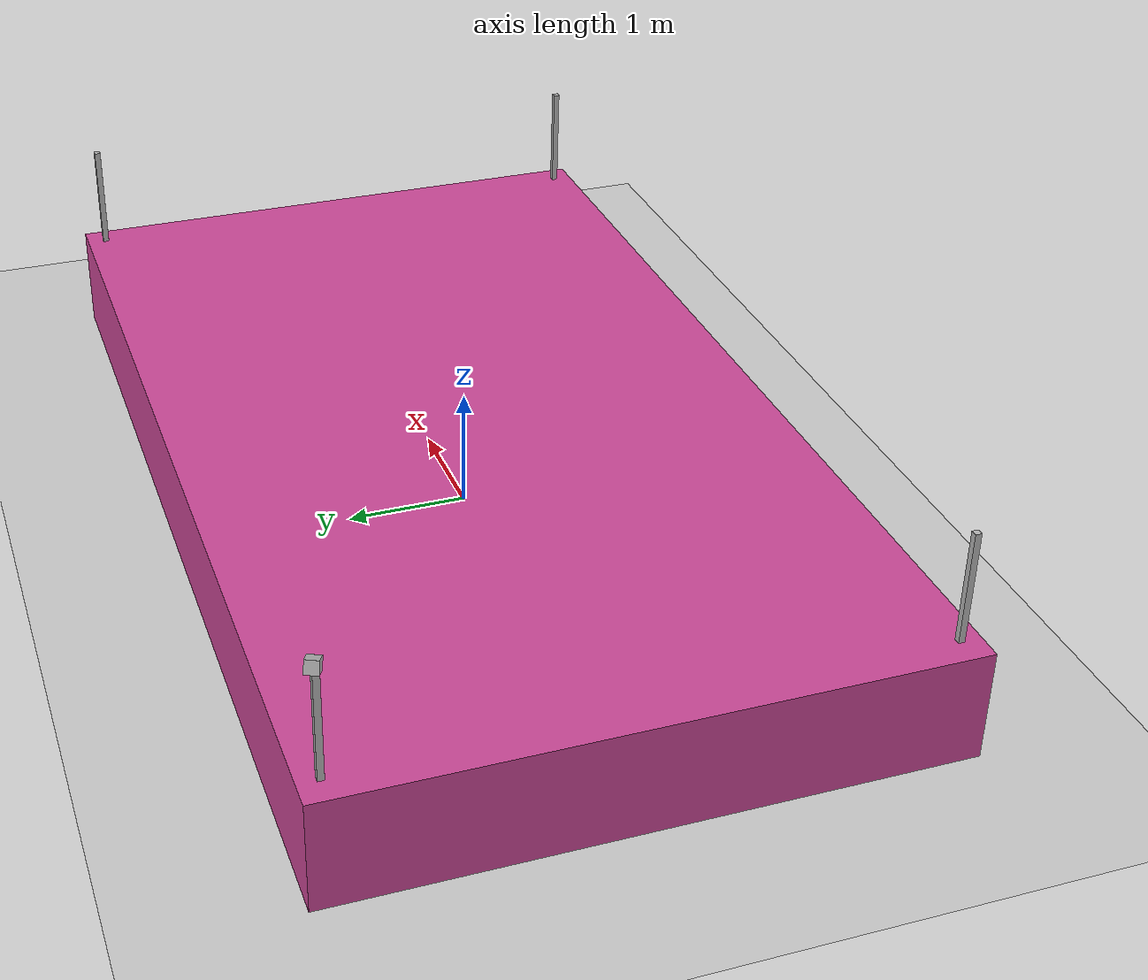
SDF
<sdf version="1.6">
 <world name="default">
  <light name="sun" type="directional">
   <pose>0 0 10 0 -0 0</pose>
   <diffuse>0.8 0.8 0.8 1</diffuse>
   <specular>0.2 0.2 0.2 1</specular>
   <attenuation>
    <range>1000</range>
    <constant>0.9</constant>
    <linear>0.01</linear>
    <quadratic>0.001</quadratic>
   </attenuation>
   <direction>-0.5 0.1 -0.9</direction>
  </light>
  <model name="ground_plane">
   <static>1</static>
   <link name="link">
    <collision name="collision">
     <geometry><plane><normal>0 0 1</normal><size>100 100</size></plane></geometry>
     <surface>
      <contact><collide_bitmask>65535</collide_bitmask></contact>
      <friction><ode><mu>100</mu><mu2>50</mu2></ode></friction>
     </surface>
    </collision>
    <visual name="visual">
     <cast_shadows>0</cast_shadows>
     <geometry><plane><normal>0 0 1</normal><size>100 100</size></plane></geometry>
     <material>
      <script><uri>file://media/materials/scripts/gazebo.material</uri><name>Gazebo/Grey</name></script>
     </material>
    </visual>
   </link>
  </model>
  <gravity>0 0 -9.8</gravity>
  <magnetic_field>6e-06 2.3e-05 -4.2e-05</magnetic_field>
  <atmosphere type="adiabatic"/>
  <physics name="default_physics" default="0" type="ode">
   <max_step_size>0.001</max_step_size>
   <real_time_factor>1</real_time_factor>
   <real_time_update_rate>1000</real_time_update_rate>
  </physics>
  <scene><ambient>0.4 0.4 0.4 1</ambient><background>0.7 0.7 0.7 1</background><shadows>1</shadows></scene>
  <spherical_coordinates>
   <surface_model>EARTH_WGS84</surface_model>
   <latitude_deg>0</latitude_deg>
   <longitude_deg>0</longitude_deg>
   <elevation>0</elevation>
   <heading_deg>0</heading_deg>
  </spherical_coordinates>
  <model name="unnamed">
   <link name="Lfield">
    <inertial>
     <pose>0 0 -0.078571 0 -0 0</pose>
     <mass>0.014</mass>
     <inertia>
      <ixx>0.0477156</ixx>
      <ixy>-0.00216</ixy>
      <ixz>4.33681e-19</ixz>
      <iyy>0.13216</iyy>
      <iyz>0</iyz>
      <izz>0.163148</izz>
     </inertia>
    </inertial>
    <collision name="Lfield_fixed_joint_lump__A1_collision">
     <pose>0 1.205 -0.3 0 -0 0</pose>
     <geometry><box><size>1 0.2 0.4</size></box></geometry>
    </collision>
    <collision name="Lfield_fixed_joint_lump__A2_collision_1">
     <pose>0 -1.205 -0.3 0 -0 0</pose>
     <geometry><box><size>1 0.2 0.4</size></box></geometry>
    </collision>
    <collision name="Lfield_fixed_joint_lump__A3_collision_2">
     <pose>3.54 -1.14 -0.3 0 -0 0</pose>
     <geometry><box><size>1 0.2 0.4</size></box></geometry>
    </collision>
    <collision name="Lfield_fixed_joint_lump__A4_collision_3">
     <pose>2.94 1.74 -0.3 0 -0 1.5708</pose>
     <geometry><box><size>1 0.2 0.4</size></box></geometry>
    </collision>
    <collision name="Lfield_fixed_joint_lump__A5_collision_4">
     <pose>-3.54 1.14 -0.3 0 -0 0</pose>
     <geometry><box><size>1 0.2 0.4</size></box></geometry>
    </collision>
    <collision name="Lfield_fixed_joint_lump__A6_collision_5">
     <pose>-2.94 -1.74 -0.3 0 -0 1.5708</pose>
     <geometry><box><size>1 0.2 0.4</size></box></geometry>
    </collision>
    <collision name="Lfield_fixed_joint_lump__B1_collision_6">
     <pose>-2.14 0 -0.3 0 -0 0</pose>
     <geometry><box><size>0.8 0.2 0.4</size></box></geometry>
    </collision>
    <collision name="Lfield_fixed_joint_lump__B2_collision_7">
     <pose>2.14 0 -0.3 0 -0 0</pose>
     <geometry><box><size>0.8 0.2 0.4</size></box></geometry>
    </collision>
    <collision name="Lfield_fixed_joint_lump__D1_collision_8">
     <pose>4.04 -2.28 0.4 0 -0 0</pose>
     <geometry><box><size>0.05 0.05 1.8</size></box></geometry>
    </collision>
    <collision name="Lfield_fixed_joint_lump__D2_collision_9">
     <pose>4.04 2.28 0.4 0 -0 0</pose>
     <geometry><box><size>0.05 0.05 1.8</size></box></geometry>
    </collision>
    <collision name="Lfield_fixed_joint_lump__D3_collision_10">
     <pose>-4.04 2.28 0.4 0 -0 0</pose>
     <geometry><box><size>0.05 0.05 1.8</size></box></geometry>
    </collision>
    <collision name="Lfield_fixed_joint_lump__D4_collision_11">
     <pose>-4.04 -2.28 0.4 0 -0 0</pose>
     <geometry><box><size>0.05 0.05 1.8</size></box></geometry>
    </collision>
    <collision name="Lfield_fixed_joint_lump__center_collision_12">
     <pose>0 0 -0.3 0 -0 0.7854</pose>
     <geometry><box><size>0.25 0.25 0.4</size></box></geometry>
    </collision>
    <visual name="Lfield_fixed_joint_lump__field_visual">
     <geometry><mesh><scale>4.245 2.445 0.5</scale><uri>../meshes/dae/Cube.001.dae</uri></mesh></geometry>
    </visual>
    <visual name="Lfield_fixed_joint_lump__A1_visual_1">
     <pose>0 1.205 -0.3 0 -0 0</pose>
     <geometry><box><size>1 0.2 0.4</size></box></geometry>
    </visual>
    <visual name="Lfield_fixed_joint_lump__A2_visual_2">
     <pose>0 -1.205 -0.3 0 -0 0</pose>
     <geometry><box><size>1 0.2 0.4</size></box></geometry>
    </visual>
    <visual name="Lfield_fixed_joint_lump__A3_visual_3">
     <pose>3.54 -1.14 -0.3 0 -0 0</pose>
     <geometry><box><size>1 0.2 0.4</size></box></geometry>
    </visual>
    <visual name="Lfield_fixed_joint_lump__A4_visual_4">
     <pose>2.94 1.74 -0.3 0 -0 1.5708</pose>
     <geometry><box><size>1 0.2 0.4</size></box></geometry>
    </visual>
    <visual name="Lfield_fixed_joint_lump__A5_visual_5">
     <pose>-3.54 1.14 -0.3 0 -0 0</pose>
     <geometry><box><size>1 0.2 0.4</size></box></geometry>
    </visual>
    <visual name="Lfield_fixed_joint_lump__A6_visual_6">
     <pose>-2.94 -1.74 -0.3 0 -0 1.5708</pose>
     <geometry><box><size>1 0.2 0.4</size></box></geometry>
    </visual>
    <visual name="Lfield_fixed_joint_lump__B1_visual_7">
     <pose>-2.14 0 -0.3 0 -0 0</pose>
     <geometry><box><size>0.8 0.2 0.4</size></box></geometry>
    </visual>
    <visual name="Lfield_fixed_joint_lump__B2_visual_8">
     <pose>2.14 0 -0.3 0 -0 0</pose>
     <geometry><box><size>0.8 0.2 0.4</size></box></geometry>
    </visual>
    <visual name="Lfield_fixed_joint_lump__D1_visual_9">
     <pose>4.04 -2.28 0.4 0 -0 0</pose>
     <geometry><box><size>0.05 0.05 1.8</size></box></geometry>
    </visual>
    <visual name="Lfield_fixed_joint_lump__D2_visual_10">
     <pose>4.04 2.28 0.4 0 -0 0</pose>
     <geometry><box><size>0.05 0.05 1.8</size></box></geometry>
    </visual>
    <visual name="Lfield_fixed_joint_lump__D3_visual_11">
     <pose>-4.04 2.28 0.4 0 -0 0</pose>
     <geometry><box><size>0.05 0.05 1.8</size></box></geometry>
    </visual>
    <visual name="Lfield_fixed_joint_lump__D4_visual_12">
     <pose>-4.04 -2.28 0.4 0 -0 0</pose>
     <geometry><box><size>0.05 0.05 1.8</size></box></geometry>
    </visual>
    <visual name="Lfield_fixed_joint_lump__center_visual_13">
     <pose>0 0 -0.3 0 -0 0.7854</pose>
     <geometry><box><size>0.25 0.25 0.4</size></box></geometry>
    </visual>
   </link>
   <pose>0 1e-06 0.499998 -2e-06 1e-06 -0</pose>
  </model>
  <model name="camera">
   <static>true</static>
   <pose>-4.04054 2.28921 1.8 0 0.3 -0.45</pose>
   <link name="link">
    <inertial>
     <mass>0.1</mass>
     <inertia>
      <ixx>0.000166667</ixx>
      <iyy>0.000166667</iyy>
      <izz>0.000166667</izz>
      <ixy>0</ixy>
      <ixz>0</ixz>
      <iyz>0</iyz>
     </inertia>
    </inertial>
    <collision name="collision"><geometry><box><size>0.1 0.1 0.1</size></box></geometry></collision>
    <visual name="visual"><geometry><box><size>0.1 0.1 0.1</size></box></geometry></visual>
    <sensor name="camera" type="camera">
     <camera name="__default__">
      <horizontal_fov>1.047</horizontal_fov>
      <image><width>320</width><height>240</height></image>
      <clip><near>0.1</near><far>100</far></clip>
     </camera>
     <always_on>1</always_on>
     <update_rate>30</update_rate>
     <visualize>1</visualize>
     <plugin name="camera_controller" filename="libgazebo_ros_camera.so">
      <alwaysOn>true</alwaysOn>
      <updateRate>0.0</updateRate>
      <cameraName>camera1</cameraName>
      <imageTopicName>image_raw</imageTopicName>
      <cameraInfoTopicName>camera_info</cameraInfoTopicName>
      <frameName>camera_link</frameName>
      <hackBaseline>0.07</hackBaseline>
      <distortionK1>0.0</distortionK1>
      <distortionK2>0.0</distortionK2>
      <distortionK3>0.0</distortionK3>
      <distortionT1>0.0</distortionT1>
      <distortionT2>0.0</distortionT2>
     </plugin>
    </sensor>
   </link>
  </model>
 </world>
</sdf>
